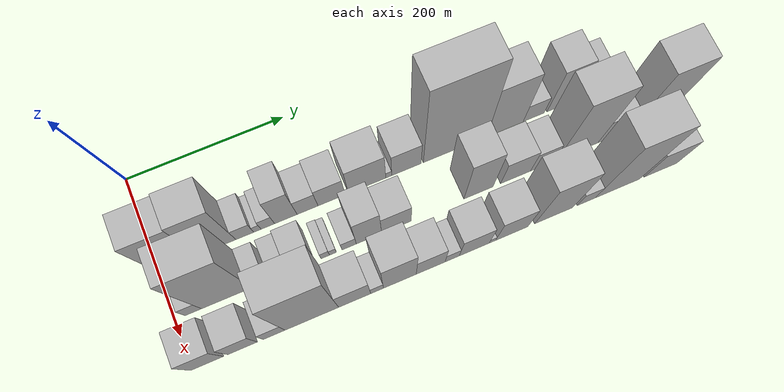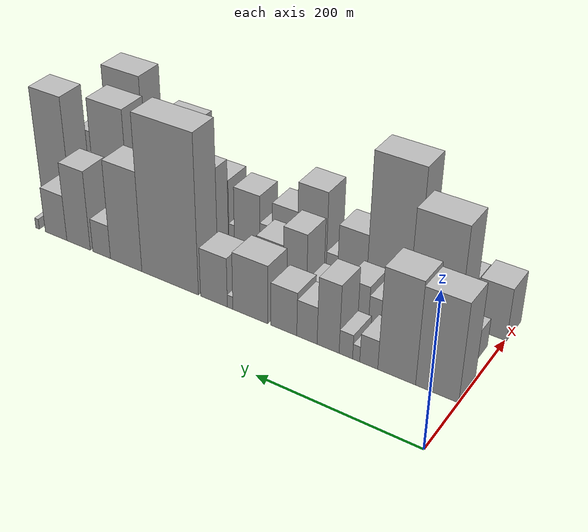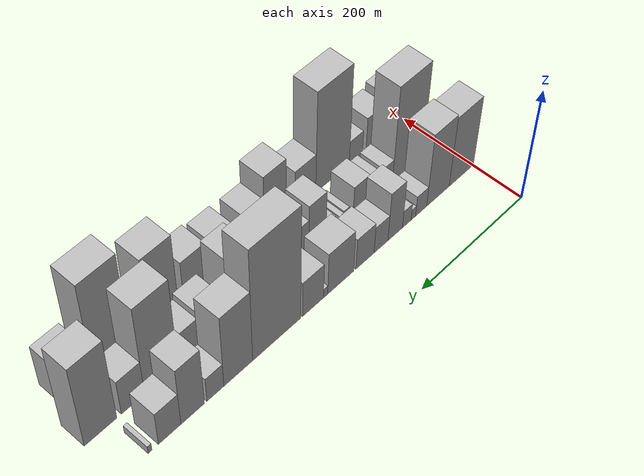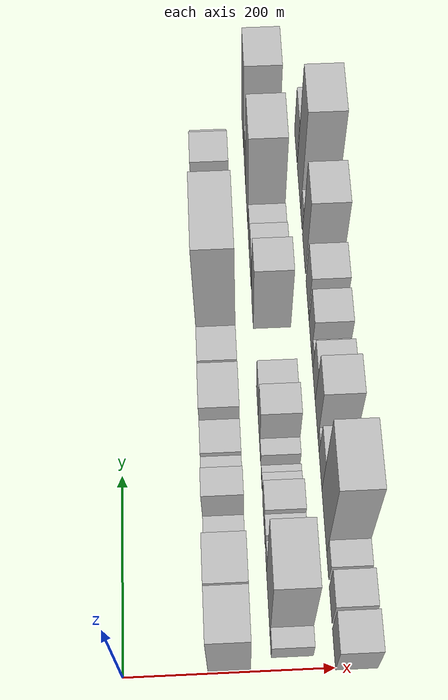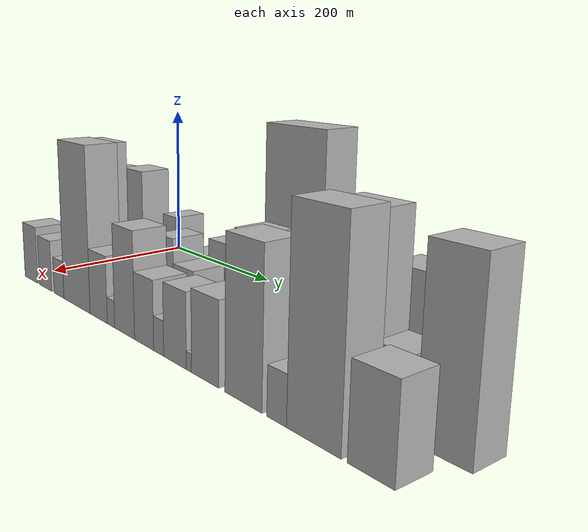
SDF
<sdf version="1.6">
 <world name="default">
  <model name="building_17">
   <static>1</static>
   <pose>100.0000 24.9637 0 0.000000 0.000000 0.000000</pose>
   <link name="link">
    <pose>0 0 66.00 0 0 0</pose>
    <collision name="collision"><geometry><box><size>40.0000 50.2759 132.0000</size></box></geometry></collision>
    <visual name="visual">
     <cast_shadows>0</cast_shadows>
     <geometry><box><size>40.0000 50.2759 132.0000</size></box></geometry>
     <material>
      <script>
       <uri>model://HANNAS_wall/materials/scripts</uri>
       <uri>model://HANNAS_wall/materials/textures</uri>
       <name>vrc/HANNAS_wall</name>
      </script>
     </material>
    </visual>
   </link>
  </model>
  <model name="building_18">
   <static>1</static>
   <pose>100.0000 72.8761 0 0.000000 0.000000 0.000000</pose>
   <link name="link">
    <pose>0 0 69.00 0 0 0</pose>
    <collision name="collision"><geometry><box><size>40.0000 45.5489 138.0000</size></box></geometry></collision>
    <visual name="visual">
     <cast_shadows>0</cast_shadows>
     <geometry><box><size>40.0000 45.5489 138.0000</size></box></geometry>
     <material>
      <script>
       <uri>model://HANNAS_wall/materials/scripts</uri>
       <uri>model://HANNAS_wall/materials/textures</uri>
       <name>vrc/HANNAS_wall</name>
      </script>
     </material>
    </visual>
   </link>
  </model>
  <model name="building_19">
   <static>1</static>
   <pose>100.0000 106.7918 0 0.000000 0.000000 0.000000</pose>
   <link name="link">
    <pose>0 0 19.50 0 0 0</pose>
    <collision name="collision"><geometry><box><size>40.0000 22.2826 39.0000</size></box></geometry></collision>
    <visual name="visual">
     <cast_shadows>0</cast_shadows>
     <geometry><box><size>40.0000 22.2826 39.0000</size></box></geometry>
     <material>
      <script>
       <uri>model://HANNAS_wall/materials/scripts</uri>
       <uri>model://HANNAS_wall/materials/textures</uri>
       <name>vrc/HANNAS_wall</name>
      </script>
     </material>
    </visual>
   </link>
  </model>
  <model name="building_20">
   <static>1</static>
   <pose>100.0000 122.3937 0 0.000000 0.000000 0.000000</pose>
   <link name="link">
    <pose>0 0 10.50 0 0 0</pose>
    <collision name="collision"><geometry><box><size>40.0000 8.9211 21.0000</size></box></geometry></collision>
    <visual name="visual">
     <cast_shadows>0</cast_shadows>
     <geometry><box><size>40.0000 8.9211 21.0000</size></box></geometry>
     <material>
      <script>
       <uri>model://HANNAS_wall/materials/scripts</uri>
       <uri>model://HANNAS_wall/materials/textures</uri>
       <name>vrc/HANNAS_wall</name>
      </script>
     </material>
    </visual>
   </link>
  </model>
  <model name="building_21">
   <static>1</static>
   <pose>100.0000 135.3229 0 0.000000 0.000000 0.000000</pose>
   <link name="link">
    <pose>0 0 16.50 0 0 0</pose>
    <collision name="collision"><geometry><box><size>40.0000 16.9375 33.0000</size></box></geometry></collision>
    <visual name="visual">
     <cast_shadows>0</cast_shadows>
     <geometry><box><size>40.0000 16.9375 33.0000</size></box></geometry>
     <material>
      <script>
       <uri>model://HANNAS_wall/materials/scripts</uri>
       <uri>model://HANNAS_wall/materials/textures</uri>
       <name>vrc/HANNAS_wall</name>
      </script>
     </material>
    </visual>
   </link>
  </model>
  <model name="building_22">
   <static>1</static>
   <pose>100.0000 157.8941 0 0.000000 0.000000 0.000000</pose>
   <link name="link">
    <pose>0 0 46.50 0 0 0</pose>
    <collision name="collision"><geometry><box><size>40.0000 28.2049 93.0000</size></box></geometry></collision>
    <visual name="visual">
     <cast_shadows>0</cast_shadows>
     <geometry><box><size>40.0000 28.2049 93.0000</size></box></geometry>
     <material>
      <script>
       <uri>model://HANNAS_wall/materials/scripts</uri>
       <uri>model://HANNAS_wall/materials/textures</uri>
       <name>vrc/HANNAS_wall</name>
      </script>
     </material>
    </visual>
   </link>
  </model>
  <model name="building_23">
   <static>1</static>
   <pose>100.0000 185.2162 0 0.000000 0.000000 0.000000</pose>
   <link name="link">
    <pose>0 0 25.50 0 0 0</pose>
    <collision name="collision"><geometry><box><size>40.0000 26.4393 51.0000</size></box></geometry></collision>
    <visual name="visual">
     <cast_shadows>0</cast_shadows>
     <geometry><box><size>40.0000 26.4393 51.0000</size></box></geometry>
     <material>
      <script>
       <uri>model://HANNAS_wall/materials/scripts</uri>
       <uri>model://HANNAS_wall/materials/textures</uri>
       <name>vrc/HANNAS_wall</name>
      </script>
     </material>
    </visual>
   </link>
  </model>
  <model name="building_24">
   <static>1</static>
   <pose>100.0000 215.7490 0 0.000000 0.000000 0.000000</pose>
   <link name="link">
    <pose>0 0 30.00 0 0 0</pose>
    <collision name="collision"><geometry><box><size>40.0000 34.6262 60.0000</size></box></geometry></collision>
    <visual name="visual">
     <cast_shadows>0</cast_shadows>
     <geometry><box><size>40.0000 34.6262 60.0000</size></box></geometry>
     <material>
      <script>
       <uri>model://HANNAS_wall/materials/scripts</uri>
       <uri>model://HANNAS_wall/materials/textures</uri>
       <name>vrc/HANNAS_wall</name>
      </script>
     </material>
    </visual>
   </link>
  </model>
  <model name="building_25">
   <static>1</static>
   <pose>100.0000 261.0581 0 0.000000 0.000000 0.000000</pose>
   <link name="link">
    <pose>0 0 40.50 0 0 0</pose>
    <collision name="collision"><geometry><box><size>40.0000 47.9920 81.0000</size></box></geometry></collision>
    <visual name="visual">
     <cast_shadows>0</cast_shadows>
     <geometry><box><size>40.0000 47.9920 81.0000</size></box></geometry>
     <material>
      <script>
       <uri>model://HANNAS_wall/materials/scripts</uri>
       <uri>model://HANNAS_wall/materials/textures</uri>
       <name>vrc/HANNAS_wall</name>
      </script>
     </material>
    </visual>
   </link>
  </model>
  <model name="building_26">
   <static>1</static>
   <pose>100.0000 288.8642 0 0.000000 0.000000 0.000000</pose>
   <link name="link">
    <pose>0 0 9.00 0 0 0</pose>
    <collision name="collision"><geometry><box><size>40.0000 7.6201 18.0000</size></box></geometry></collision>
    <visual name="visual">
     <cast_shadows>0</cast_shadows>
     <geometry><box><size>40.0000 7.6201 18.0000</size></box></geometry>
     <material>
      <script>
       <uri>model://HANNAS_wall/materials/scripts</uri>
       <uri>model://HANNAS_wall/materials/textures</uri>
       <name>vrc/HANNAS_wall</name>
      </script>
     </material>
    </visual>
   </link>
  </model>
  <model name="building_27">
   <static>1</static>
   <pose>100.0000 311.6634 0 0.000000 0.000000 0.000000</pose>
   <link name="link">
    <pose>0 0 34.50 0 0 0</pose>
    <collision name="collision"><geometry><box><size>40.0000 37.9783 69.0000</size></box></geometry></collision>
    <visual name="visual">
     <cast_shadows>0</cast_shadows>
     <geometry><box><size>40.0000 37.9783 69.0000</size></box></geometry>
     <material>
      <script>
       <uri>model://HANNAS_wall/materials/scripts</uri>
       <uri>model://HANNAS_wall/materials/textures</uri>
       <name>vrc/HANNAS_wall</name>
      </script>
     </material>
    </visual>
   </link>
  </model>
  <model name="building_28">
   <static>1</static>
   <pose>100.0000 375.5406 0 0.000000 0.000000 0.000000</pose>
   <link name="link">
    <pose>0 0 109.50 0 0 0</pose>
    <collision name="collision"><geometry><box><size>40.0000 83.7762 219.0000</size></box></geometry></collision>
    <visual name="visual">
     <cast_shadows>0</cast_shadows>
     <geometry><box><size>40.0000 83.7762 219.0000</size></box></geometry>
     <material>
      <script>
       <uri>model://HANNAS_wall/materials/scripts</uri>
       <uri>model://HANNAS_wall/materials/textures</uri>
       <name>vrc/HANNAS_wall</name>
      </script>
     </material>
    </visual>
   </link>
  </model>
  <model name="building_29">
   <static>1</static>
   <pose>100.0000 441.6724 0 0.000000 0.000000 0.000000</pose>
   <link name="link">
    <pose>0 0 70.50 0 0 0</pose>
    <collision name="collision"><geometry><box><size>40.0000 48.4873 141.0000</size></box></geometry></collision>
    <visual name="visual">
     <cast_shadows>0</cast_shadows>
     <geometry><box><size>40.0000 48.4873 141.0000</size></box></geometry>
     <material>
      <script>
       <uri>model://HANNAS_wall/materials/scripts</uri>
       <uri>model://HANNAS_wall/materials/textures</uri>
       <name>vrc/HANNAS_wall</name>
      </script>
     </material>
    </visual>
   </link>
  </model>
  <model name="building_30">
   <static>1</static>
   <pose>100.0000 479.9010 0 0.000000 0.000000 0.000000</pose>
   <link name="link">
    <pose>0 0 24.00 0 0 0</pose>
    <collision name="collision"><geometry><box><size>40.0000 27.9699 48.0000</size></box></geometry></collision>
    <visual name="visual">
     <cast_shadows>0</cast_shadows>
     <geometry><box><size>40.0000 27.9699 48.0000</size></box></geometry>
     <material>
      <script>
       <uri>model://HANNAS_wall/materials/scripts</uri>
       <uri>model://HANNAS_wall/materials/textures</uri>
       <name>vrc/HANNAS_wall</name>
      </script>
     </material>
    </visual>
   </link>
  </model>
  <model name="building_31">
   <static>1</static>
   <pose>100.0000 516.8351 0 0.000000 0.000000 0.000000</pose>
   <link name="link">
    <pose>0 0 57.00 0 0 0</pose>
    <collision name="collision"><geometry><box><size>40.0000 37.8981 114.0000</size></box></geometry></collision>
    <visual name="visual">
     <cast_shadows>0</cast_shadows>
     <geometry><box><size>40.0000 37.8981 114.0000</size></box></geometry>
     <material>
      <script>
       <uri>model://HANNAS_wall/materials/scripts</uri>
       <uri>model://HANNAS_wall/materials/textures</uri>
       <name>vrc/HANNAS_wall</name>
      </script>
     </material>
    </visual>
   </link>
  </model>
  <model name="building_32">
   <static>1</static>
   <pose>100.0000 553.6374 0 0.000000 0.000000 0.000000</pose>
   <link name="link">
    <pose>0 0 33.00 0 0 0</pose>
    <collision name="collision"><geometry><box><size>40.0000 35.7065 66.0000</size></box></geometry></collision>
    <visual name="visual">
     <cast_shadows>0</cast_shadows>
     <geometry><box><size>40.0000 35.7065 66.0000</size></box></geometry>
     <material>
      <script>
       <uri>model://HANNAS_wall/materials/scripts</uri>
       <uri>model://HANNAS_wall/materials/textures</uri>
       <name>vrc/HANNAS_wall</name>
      </script>
     </material>
    </visual>
   </link>
  </model>
  <model name="building_33">
   <static>1</static>
   <pose>100.0000 584.5289 0 0.000000 0.000000 0.000000</pose>
   <link name="link">
    <pose>0 0 7.50 0 0 0</pose>
    <collision name="collision"><geometry><box><size>40.0000 6.0766 15.0000</size></box></geometry></collision>
    <visual name="visual">
     <cast_shadows>0</cast_shadows>
     <geometry><box><size>40.0000 6.0766 15.0000</size></box></geometry>
     <material>
      <script>
       <uri>model://HANNAS_wall/materials/scripts</uri>
       <uri>model://HANNAS_wall/materials/textures</uri>
       <name>vrc/HANNAS_wall</name>
      </script>
     </material>
    </visual>
   </link>
  </model>
  <model name="building_51">
   <static>1</static>
   <pose>160.0000 22.3346 0 0.000000 0.000000 0.000000</pose>
   <link name="link">
    <pose>0 0 19.50 0 0 0</pose>
    <collision name="collision"><geometry><box><size>40.0000 19.7651 39.0000</size></box></geometry></collision>
    <visual name="visual">
     <cast_shadows>0</cast_shadows>
     <geometry><box><size>40.0000 19.7651 39.0000</size></box></geometry>
     <material>
      <script>
       <uri>model://HANNAS_wall/materials/scripts</uri>
       <uri>model://HANNAS_wall/materials/textures</uri>
       <name>vrc/HANNAS_wall</name>
      </script>
     </material>
    </visual>
   </link>
  </model>
  <model name="building_52">
   <static>1</static>
   <pose>160.0000 62.6329 0 0.000000 0.000000 0.000000</pose>
   <link name="link">
    <pose>0 0 88.50 0 0 0</pose>
    <collision name="collision"><geometry><box><size>40.0000 60.8315 177.0000</size></box></geometry></collision>
    <visual name="visual">
     <cast_shadows>0</cast_shadows>
     <geometry><box><size>40.0000 60.8315 177.0000</size></box></geometry>
     <material>
      <script>
       <uri>model://HANNAS_wall/materials/scripts</uri>
       <uri>model://HANNAS_wall/materials/textures</uri>
       <name>vrc/HANNAS_wall</name>
      </script>
     </material>
    </visual>
   </link>
  </model>
  <model name="building_53">
   <static>1</static>
   <pose>160.0000 103.6001 0 0.000000 0.000000 0.000000</pose>
   <link name="link">
    <pose>0 0 21.00 0 0 0</pose>
    <collision name="collision"><geometry><box><size>40.0000 21.1028 42.0000</size></box></geometry></collision>
    <visual name="visual">
     <cast_shadows>0</cast_shadows>
     <geometry><box><size>40.0000 21.1028 42.0000</size></box></geometry>
     <material>
      <script>
       <uri>model://HANNAS_wall/materials/scripts</uri>
       <uri>model://HANNAS_wall/materials/textures</uri>
       <name>vrc/HANNAS_wall</name>
      </script>
     </material>
    </visual>
   </link>
  </model>
  <model name="building_54">
   <static>1</static>
   <pose>160.0000 129.7369 0 0.000000 0.000000 0.000000</pose>
   <link name="link">
    <pose>0 0 21.00 0 0 0</pose>
    <collision name="collision"><geometry><box><size>40.0000 21.1707 42.0000</size></box></geometry></collision>
    <visual name="visual">
     <cast_shadows>0</cast_shadows>
     <geometry><box><size>40.0000 21.1707 42.0000</size></box></geometry>
     <material>
      <script>
       <uri>model://HANNAS_wall/materials/scripts</uri>
       <uri>model://HANNAS_wall/materials/textures</uri>
       <name>vrc/HANNAS_wall</name>
      </script>
     </material>
    </visual>
   </link>
  </model>
  <model name="building_55">
   <static>1</static>
   <pose>160.0000 155.4220 0 0.000000 0.000000 0.000000</pose>
   <link name="link">
    <pose>0 0 27.00 0 0 0</pose>
    <collision name="collision"><geometry><box><size>40.0000 30.1995 54.0000</size></box></geometry></collision>
    <visual name="visual">
     <cast_shadows>0</cast_shadows>
     <geometry><box><size>40.0000 30.1995 54.0000</size></box></geometry>
     <material>
      <script>
       <uri>model://HANNAS_wall/materials/scripts</uri>
       <uri>model://HANNAS_wall/materials/textures</uri>
       <name>vrc/HANNAS_wall</name>
      </script>
     </material>
    </visual>
   </link>
  </model>
  <model name="building_56">
   <static>1</static>
   <pose>160.0000 183.7877 0 0.000000 0.000000 0.000000</pose>
   <link name="link">
    <pose>0 0 12.00 0 0 0</pose>
    <collision name="collision"><geometry><box><size>40.0000 10.5321 24.0000</size></box></geometry></collision>
    <visual name="visual">
     <cast_shadows>0</cast_shadows>
     <geometry><box><size>40.0000 10.5321 24.0000</size></box></geometry>
     <material>
      <script>
       <uri>model://HANNAS_wall/materials/scripts</uri>
       <uri>model://HANNAS_wall/materials/textures</uri>
       <name>vrc/HANNAS_wall</name>
      </script>
     </material>
    </visual>
   </link>
  </model>
  <model name="building_57">
   <static>1</static>
   <pose>160.0000 193.3429 0 0.000000 0.000000 0.000000</pose>
   <link name="link">
    <pose>0 0 10.50 0 0 0</pose>
    <collision name="collision"><geometry><box><size>40.0000 8.5784 21.0000</size></box></geometry></collision>
    <visual name="visual">
     <cast_shadows>0</cast_shadows>
     <geometry><box><size>40.0000 8.5784 21.0000</size></box></geometry>
     <material>
      <script>
       <uri>model://HANNAS_wall/materials/scripts</uri>
       <uri>model://HANNAS_wall/materials/textures</uri>
       <name>vrc/HANNAS_wall</name>
      </script>
     </material>
    </visual>
   </link>
  </model>
  <model name="building_58">
   <static>1</static>
   <pose>160.0000 213.6155 0 0.000000 0.000000 0.000000</pose>
   <link name="link">
    <pose>0 0 15.00 0 0 0</pose>
    <collision name="collision"><geometry><box><size>40.0000 17.9667 30.0000</size></box></geometry></collision>
    <visual name="visual">
     <cast_shadows>0</cast_shadows>
     <geometry><box><size>40.0000 17.9667 30.0000</size></box></geometry>
     <material>
      <script>
       <uri>model://HANNAS_wall/materials/scripts</uri>
       <uri>model://HANNAS_wall/materials/textures</uri>
       <name>vrc/HANNAS_wall</name>
      </script>
     </material>
    </visual>
   </link>
  </model>
  <model name="building_59">
   <static>1</static>
   <pose>160.0000 238.5646 0 0.000000 0.000000 0.000000</pose>
   <link name="link">
    <pose>0 0 46.50 0 0 0</pose>
    <collision name="collision"><geometry><box><size>40.0000 31.9316 93.0000</size></box></geometry></collision>
    <visual name="visual">
     <cast_shadows>0</cast_shadows>
     <geometry><box><size>40.0000 31.9316 93.0000</size></box></geometry>
     <material>
      <script>
       <uri>model://HANNAS_wall/materials/scripts</uri>
       <uri>model://HANNAS_wall/materials/textures</uri>
       <name>vrc/HANNAS_wall</name>
      </script>
     </material>
    </visual>
   </link>
  </model>
  <model name="building_60">
   <static>1</static>
   <pose>160.0000 273.2332 0 0.000000 0.000000 0.000000</pose>
   <link name="link">
    <pose>0 0 33.00 0 0 0</pose>
    <collision name="collision"><geometry><box><size>40.0000 37.4056 66.0000</size></box></geometry></collision>
    <visual name="visual">
     <cast_shadows>0</cast_shadows>
     <geometry><box><size>40.0000 37.4056 66.0000</size></box></geometry>
     <material>
      <script>
       <uri>model://HANNAS_wall/materials/scripts</uri>
       <uri>model://HANNAS_wall/materials/textures</uri>
       <name>vrc/HANNAS_wall</name>
      </script>
     </material>
    </visual>
   </link>
  </model>
  <model name="building_61">
   <static>1</static>
   <pose>160.0000 378.6935 0 0.000000 0.000000 0.000000</pose>
   <link name="link">
    <pose>0 0 63.00 0 0 0</pose>
    <collision name="collision"><geometry><box><size>40.0000 37.8384 126.0000</size></box></geometry></collision>
    <visual name="visual">
     <cast_shadows>0</cast_shadows>
     <geometry><box><size>40.0000 37.8384 126.0000</size></box></geometry>
     <material>
      <script>
       <uri>model://HANNAS_wall/materials/scripts</uri>
       <uri>model://HANNAS_wall/materials/textures</uri>
       <name>vrc/HANNAS_wall</name>
      </script>
     </material>
    </visual>
   </link>
  </model>
  <model name="building_62">
   <static>1</static>
   <pose>160.0000 427.2526 0 0.000000 0.000000 0.000000</pose>
   <link name="link">
    <pose>0 0 36.00 0 0 0</pose>
    <collision name="collision"><geometry><box><size>40.0000 39.2799 72.0000</size></box></geometry></collision>
    <visual name="visual">
     <cast_shadows>0</cast_shadows>
     <geometry><box><size>40.0000 39.2799 72.0000</size></box></geometry>
     <material>
      <script>
       <uri>model://HANNAS_wall/materials/scripts</uri>
       <uri>model://HANNAS_wall/materials/textures</uri>
       <name>vrc/HANNAS_wall</name>
      </script>
     </material>
    </visual>
   </link>
  </model>
  <model name="building_63">
   <static>1</static>
   <pose>160.0000 462.1806 0 0.000000 0.000000 0.000000</pose>
   <link name="link">
    <pose>0 0 30.00 0 0 0</pose>
    <collision name="collision"><geometry><box><size>40.0000 30.5760 60.0000</size></box></geometry></collision>
    <visual name="visual">
     <cast_shadows>0</cast_shadows>
     <geometry><box><size>40.0000 30.5760 60.0000</size></box></geometry>
     <material>
      <script>
       <uri>model://HANNAS_wall/materials/scripts</uri>
       <uri>model://HANNAS_wall/materials/textures</uri>
       <name>vrc/HANNAS_wall</name>
      </script>
     </material>
    </visual>
   </link>
  </model>
  <model name="building_64">
   <static>1</static>
   <pose>160.0000 509.6032 0 0.000000 0.000000 0.000000</pose>
   <link name="link">
    <pose>0 0 87.00 0 0 0</pose>
    <collision name="collision"><geometry><box><size>40.0000 54.2692 174.0000</size></box></geometry></collision>
    <visual name="visual">
     <cast_shadows>0</cast_shadows>
     <geometry><box><size>40.0000 54.2692 174.0000</size></box></geometry>
     <material>
      <script>
       <uri>model://HANNAS_wall/materials/scripts</uri>
       <uri>model://HANNAS_wall/materials/textures</uri>
       <name>vrc/HANNAS_wall</name>
      </script>
     </material>
    </visual>
   </link>
  </model>
  <model name="building_65">
   <static>1</static>
   <pose>160.0000 555.1317 0 0.000000 0.000000 0.000000</pose>
   <link name="link">
    <pose>0 0 34.50 0 0 0</pose>
    <collision name="collision"><geometry><box><size>40.0000 36.7878 69.0000</size></box></geometry></collision>
    <visual name="visual">
     <cast_shadows>0</cast_shadows>
     <geometry><box><size>40.0000 36.7878 69.0000</size></box></geometry>
     <material>
      <script>
       <uri>model://HANNAS_wall/materials/scripts</uri>
       <uri>model://HANNAS_wall/materials/textures</uri>
       <name>vrc/HANNAS_wall</name>
      </script>
     </material>
    </visual>
   </link>
  </model>
  <model name="building_66">
   <static>1</static>
   <pose>160.0000 605.6838 0 0.000000 0.000000 0.000000</pose>
   <link name="link">
    <pose>0 0 81.00 0 0 0</pose>
    <collision name="collision"><geometry><box><size>40.0000 50.3163 162.0000</size></box></geometry></collision>
    <visual name="visual">
     <cast_shadows>0</cast_shadows>
     <geometry><box><size>40.0000 50.3163 162.0000</size></box></geometry>
     <material>
      <script>
       <uri>model://HANNAS_wall/materials/scripts</uri>
       <uri>model://HANNAS_wall/materials/textures</uri>
       <name>vrc/HANNAS_wall</name>
      </script>
     </material>
    </visual>
   </link>
  </model>
  <model name="building_82">
   <static>1</static>
   <pose>220.0000 17.7151 0 0.000000 0.000000 0.000000</pose>
   <link name="link">
    <pose>0 0 36.00 0 0 0</pose>
    <collision name="collision"><geometry><box><size>40.0000 38.9390 72.0000</size></box></geometry></collision>
    <visual name="visual">
     <cast_shadows>0</cast_shadows>
     <geometry><box><size>40.0000 38.9390 72.0000</size></box></geometry>
     <material>
      <script>
       <uri>model://HANNAS_wall/materials/scripts</uri>
       <uri>model://HANNAS_wall/materials/textures</uri>
       <name>vrc/HANNAS_wall</name>
      </script>
     </material>
    </visual>
   </link>
  </model>
  <model name="building_83">
   <static>1</static>
   <pose>220.0000 59.8803 0 0.000000 0.000000 0.000000</pose>
   <link name="link">
    <pose>0 0 31.50 0 0 0</pose>
    <collision name="collision"><geometry><box><size>40.0000 35.3916 63.0000</size></box></geometry></collision>
    <visual name="visual">
     <cast_shadows>0</cast_shadows>
     <geometry><box><size>40.0000 35.3916 63.0000</size></box></geometry>
     <material>
      <script>
       <uri>model://HANNAS_wall/materials/scripts</uri>
       <uri>model://HANNAS_wall/materials/textures</uri>
       <name>vrc/HANNAS_wall</name>
      </script>
     </material>
    </visual>
   </link>
  </model>
  <model name="building_84">
   <static>1</static>
   <pose>220.0000 97.7773 0 0.000000 0.000000 0.000000</pose>
   <link name="link">
    <pose>0 0 22.50 0 0 0</pose>
    <collision name="collision"><geometry><box><size>40.0000 26.4023 45.0000</size></box></geometry></collision>
    <visual name="visual">
     <cast_shadows>0</cast_shadows>
     <geometry><box><size>40.0000 26.4023 45.0000</size></box></geometry>
     <material>
      <script>
       <uri>model://HANNAS_wall/materials/scripts</uri>
       <uri>model://HANNAS_wall/materials/textures</uri>
       <name>vrc/HANNAS_wall</name>
      </script>
     </material>
    </visual>
   </link>
  </model>
  <model name="building_85">
   <static>1</static>
   <pose>220.0000 143.6430 0 0.000000 0.000000 0.000000</pose>
   <link name="link">
    <pose>0 0 94.50 0 0 0</pose>
    <collision name="collision"><geometry><box><size>40.0000 65.3290 189.0000</size></box></geometry></collision>
    <visual name="visual">
     <cast_shadows>0</cast_shadows>
     <geometry><box><size>40.0000 65.3290 189.0000</size></box></geometry>
     <material>
      <script>
       <uri>model://HANNAS_wall/materials/scripts</uri>
       <uri>model://HANNAS_wall/materials/textures</uri>
       <name>vrc/HANNAS_wall</name>
      </script>
     </material>
    </visual>
   </link>
  </model>
  <model name="building_86">
   <static>1</static>
   <pose>220.0000 195.9995 0 0.000000 0.000000 0.000000</pose>
   <link name="link">
    <pose>0 0 37.50 0 0 0</pose>
    <collision name="collision"><geometry><box><size>40.0000 39.3840 75.0000</size></box></geometry></collision>
    <visual name="visual">
     <cast_shadows>0</cast_shadows>
     <geometry><box><size>40.0000 39.3840 75.0000</size></box></geometry>
     <material>
      <script>
       <uri>model://HANNAS_wall/materials/scripts</uri>
       <uri>model://HANNAS_wall/materials/textures</uri>
       <name>vrc/HANNAS_wall</name>
      </script>
     </material>
    </visual>
   </link>
  </model>
  <model name="building_87">
   <static>1</static>
   <pose>220.0000 223.6082 0 0.000000 0.000000 0.000000</pose>
   <link name="link">
    <pose>0 0 15.00 0 0 0</pose>
    <collision name="collision"><geometry><box><size>40.0000 15.8335 30.0000</size></box></geometry></collision>
    <visual name="visual">
     <cast_shadows>0</cast_shadows>
     <geometry><box><size>40.0000 15.8335 30.0000</size></box></geometry>
     <material>
      <script>
       <uri>model://HANNAS_wall/materials/scripts</uri>
       <uri>model://HANNAS_wall/materials/textures</uri>
       <name>vrc/HANNAS_wall</name>
      </script>
     </material>
    </visual>
   </link>
  </model>
  <model name="building_88">
   <static>1</static>
   <pose>220.0000 251.9627 0 0.000000 0.000000 0.000000</pose>
   <link name="link">
    <pose>0 0 57.00 0 0 0</pose>
    <collision name="collision"><geometry><box><size>40.0000 40.8755 114.0000</size></box></geometry></collision>
    <visual name="visual">
     <cast_shadows>0</cast_shadows>
     <geometry><box><size>40.0000 40.8755 114.0000</size></box></geometry>
     <material>
      <script>
       <uri>model://HANNAS_wall/materials/scripts</uri>
       <uri>model://HANNAS_wall/materials/textures</uri>
       <name>vrc/HANNAS_wall</name>
      </script>
     </material>
    </visual>
   </link>
  </model>
  <model name="building_89">
   <static>1</static>
   <pose>220.0000 290.4858 0 0.000000 0.000000 0.000000</pose>
   <link name="link">
    <pose>0 0 36.00 0 0 0</pose>
    <collision name="collision"><geometry><box><size>40.0000 36.1707 72.0000</size></box></geometry></collision>
    <visual name="visual">
     <cast_shadows>0</cast_shadows>
     <geometry><box><size>40.0000 36.1707 72.0000</size></box></geometry>
     <material>
      <script>
       <uri>model://HANNAS_wall/materials/scripts</uri>
       <uri>model://HANNAS_wall/materials/textures</uri>
       <name>vrc/HANNAS_wall</name>
      </script>
     </material>
    </visual>
   </link>
  </model>
  <model name="building_90">
   <static>1</static>
   <pose>220.0000 317.5889 0 0.000000 0.000000 0.000000</pose>
   <link name="link">
    <pose>0 0 18.00 0 0 0</pose>
    <collision name="collision"><geometry><box><size>40.0000 18.0355 36.0000</size></box></geometry></collision>
    <visual name="visual">
     <cast_shadows>0</cast_shadows>
     <geometry><box><size>40.0000 18.0355 36.0000</size></box></geometry>
     <material>
      <script>
       <uri>model://HANNAS_wall/materials/scripts</uri>
       <uri>model://HANNAS_wall/materials/textures</uri>
       <name>vrc/HANNAS_wall</name>
      </script>
     </material>
    </visual>
   </link>
  </model>
  <model name="building_91">
   <static>1</static>
   <pose>220.0000 345.7367 0 0.000000 0.000000 0.000000</pose>
   <link name="link">
    <pose>0 0 37.50 0 0 0</pose>
    <collision name="collision"><geometry><box><size>40.0000 38.2600 75.0000</size></box></geometry></collision>
    <visual name="visual">
     <cast_shadows>0</cast_shadows>
     <geometry><box><size>40.0000 38.2600 75.0000</size></box></geometry>
     <material>
      <script>
       <uri>model://HANNAS_wall/materials/scripts</uri>
       <uri>model://HANNAS_wall/materials/textures</uri>
       <name>vrc/HANNAS_wall</name>
      </script>
     </material>
    </visual>
   </link>
  </model>
  <model name="building_92">
   <static>1</static>
   <pose>220.0000 368.9465 0 0.000000 0.000000 0.000000</pose>
   <link name="link">
    <pose>0 0 9.00 0 0 0</pose>
    <collision name="collision"><geometry><box><size>40.0000 8.1597 18.0000</size></box></geometry></collision>
    <visual name="visual">
     <cast_shadows>0</cast_shadows>
     <geometry><box><size>40.0000 8.1597 18.0000</size></box></geometry>
     <material>
      <script>
       <uri>model://HANNAS_wall/materials/scripts</uri>
       <uri>model://HANNAS_wall/materials/textures</uri>
       <name>vrc/HANNAS_wall</name>
      </script>
     </material>
    </visual>
   </link>
  </model>
  <model name="building_93">
   <static>1</static>
   <pose>220.0000 393.8463 0 0.000000 0.000000 0.000000</pose>
   <link name="link">
    <pose>0 0 40.50 0 0 0</pose>
    <collision name="collision"><geometry><box><size>40.0000 41.6398 81.0000</size></box></geometry></collision>
    <visual name="visual">
     <cast_shadows>0</cast_shadows>
     <geometry><box><size>40.0000 41.6398 81.0000</size></box></geometry>
     <material>
      <script>
       <uri>model://HANNAS_wall/materials/scripts</uri>
       <uri>model://HANNAS_wall/materials/textures</uri>
       <name>vrc/HANNAS_wall</name>
      </script>
     </material>
    </visual>
   </link>
  </model>
  <model name="building_94">
   <static>1</static>
   <pose>220.0000 448.4562 0 0.000000 0.000000 0.000000</pose>
   <link name="link">
    <pose>0 0 72.00 0 0 0</pose>
    <collision name="collision"><geometry><box><size>40.0000 49.5800 144.0000</size></box></geometry></collision>
    <visual name="visual">
     <cast_shadows>0</cast_shadows>
     <geometry><box><size>40.0000 49.5800 144.0000</size></box></geometry>
     <material>
      <script>
       <uri>model://HANNAS_wall/materials/scripts</uri>
       <uri>model://HANNAS_wall/materials/textures</uri>
       <name>vrc/HANNAS_wall</name>
      </script>
     </material>
    </visual>
   </link>
  </model>
  <model name="building_95">
   <static>1</static>
   <pose>220.0000 491.1191 0 0.000000 0.000000 0.000000</pose>
   <link name="link">
    <pose>0 0 22.50 0 0 0</pose>
    <collision name="collision"><geometry><box><size>40.0000 23.7458 45.0000</size></box></geometry></collision>
    <visual name="visual">
     <cast_shadows>0</cast_shadows>
     <geometry><box><size>40.0000 23.7458 45.0000</size></box></geometry>
     <material>
      <script>
       <uri>model://HANNAS_wall/materials/scripts</uri>
       <uri>model://HANNAS_wall/materials/textures</uri>
       <name>vrc/HANNAS_wall</name>
      </script>
     </material>
    </visual>
   </link>
  </model>
  <model name="building_96">
   <static>1</static>
   <pose>220.0000 532.5187 0 0.000000 0.000000 0.000000</pose>
   <link name="link">
    <pose>0 0 93.00 0 0 0</pose>
    <collision name="collision"><geometry><box><size>40.0000 59.0533 186.0000</size></box></geometry></collision>
    <visual name="visual">
     <cast_shadows>0</cast_shadows>
     <geometry><box><size>40.0000 59.0533 186.0000</size></box></geometry>
     <material>
      <script>
       <uri>model://HANNAS_wall/materials/scripts</uri>
       <uri>model://HANNAS_wall/materials/textures</uri>
       <name>vrc/HANNAS_wall</name>
      </script>
     </material>
    </visual>
   </link>
  </model>
  <model name="building_97">
   <static>1</static>
   <pose>220.0000 590.1432 0 0.000000 0.000000 0.000000</pose>
   <link name="link">
    <pose>0 0 40.50 0 0 0</pose>
    <collision name="collision"><geometry><box><size>40.0000 44.1958 81.0000</size></box></geometry></collision>
    <visual name="visual">
     <cast_shadows>0</cast_shadows>
     <geometry><box><size>40.0000 44.1958 81.0000</size></box></geometry>
     <material>
      <script>
       <uri>model://HANNAS_wall/materials/scripts</uri>
       <uri>model://HANNAS_wall/materials/textures</uri>
       <name>vrc/HANNAS_wall</name>
      </script>
     </material>
    </visual>
   </link>
  </model>
 </world>
</sdf>
